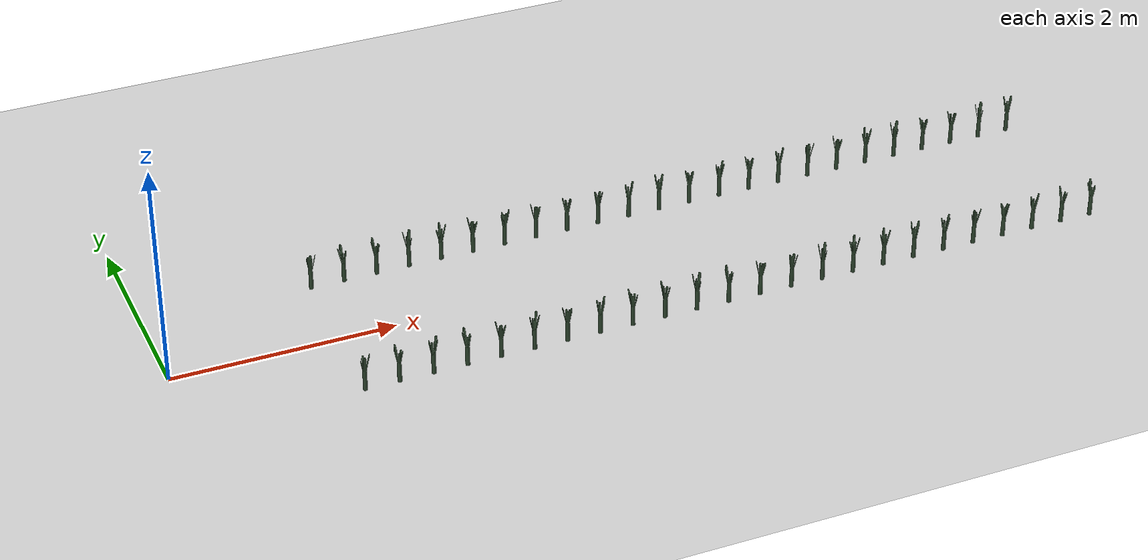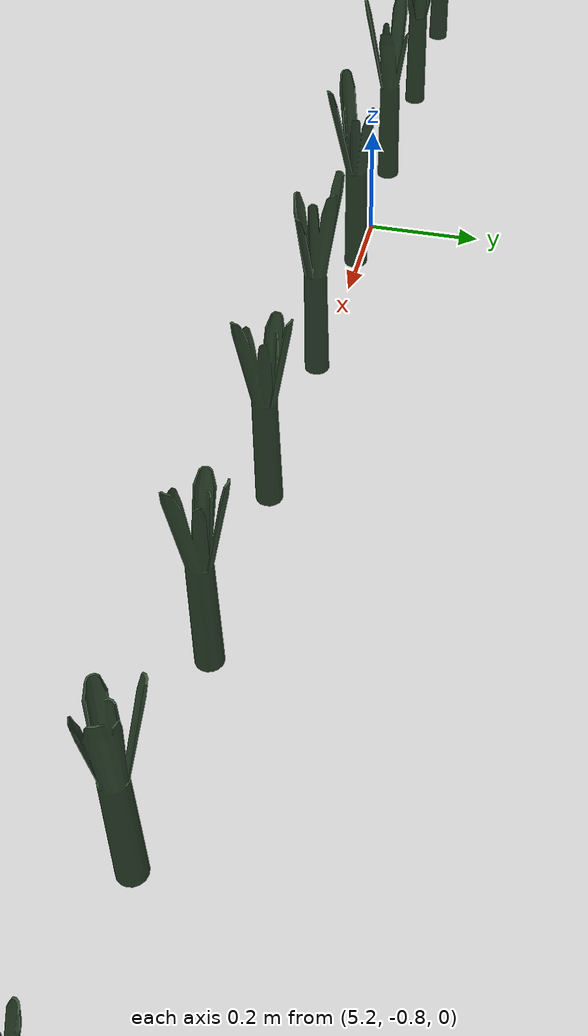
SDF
<sdf version="1.6">
 <world name="default">
  <light name="sun" type="directional">
   <pose>0 0 10 0 -0 0</pose>
   <diffuse>0.5 0.5 0.5 1</diffuse>
   <specular>0.1 0.1 0.1 1</specular>
   <attenuation>
    <range>1000</range>
    <constant>0.9</constant>
    <linear>0.01</linear>
    <quadratic>0.001</quadratic>
   </attenuation>
   <direction>0.9 0.5 -1</direction>
  </light>
  <scene><background>130 200 255 1</background><ambient>130 140 140 1</ambient></scene>
  <include><uri>model://dirt_plane</uri></include>
  <include>
   <uri>model://Leek</uri>
   <pose>1.500000 0.800000 0.15 0 0 -146.663487</pose>
   <static>0</static>
  </include>
  <include>
   <uri>model://Leek</uri>
   <pose>1.800000 0.800000 0.15 0 0 -149.057039</pose>
   <static>0</static>
  </include>
  <include><uri>model://Leek</uri><pose>2.100000 0.800000 0.15 0 0 -92.268164</pose><static>0</static></include>
  <include>
   <uri>model://Leek</uri>
   <pose>2.400000 0.800000 0.15 0 0 -118.361682</pose>
   <static>0</static>
  </include>
  <include><uri>model://Leek</uri><pose>2.700000 0.800000 0.15 0 0 -31.594706</pose><static>0</static></include>
  <include><uri>model://Leek</uri><pose>3.000000 0.800000 0.15 0 0 65.470599</pose><static>0</static></include>
  <include><uri>model://Leek</uri><pose>3.300000 0.800000 0.15 0 0 -7.781066</pose><static>0</static></include>
  <include><uri>model://Leek</uri><pose>3.600000 0.800000 0.15 0 0 166.258407</pose><static>0</static></include>
  <include>
   <uri>model://Leek</uri>
   <pose>3.900000 0.800000 0.15 0 0 -147.557406</pose>
   <static>0</static>
  </include>
  <include><uri>model://Leek</uri><pose>4.200000 0.800000 0.15 0 0 35.138611</pose><static>0</static></include>
  <include><uri>model://Leek</uri><pose>4.500000 0.800000 0.15 0 0 155.810243</pose><static>0</static></include>
  <include><uri>model://Leek</uri><pose>4.800000 0.800000 0.15 0 0 -81.205233</pose><static>0</static></include>
  <include><uri>model://Leek</uri><pose>5.100000 0.800000 0.15 0 0 166.626333</pose><static>0</static></include>
  <include><uri>model://Leek</uri><pose>5.400000 0.800000 0.15 0 0 74.332807</pose><static>0</static></include>
  <include><uri>model://Leek</uri><pose>5.700000 0.800000 0.15 0 0 91.205026</pose><static>0</static></include>
  <include><uri>model://Leek</uri><pose>6.000000 0.800000 0.15 0 0 -76.743986</pose><static>0</static></include>
  <include>
   <uri>model://Leek</uri>
   <pose>6.300000 0.800000 0.15 0 0 -159.375613</pose>
   <static>0</static>
  </include>
  <include><uri>model://Leek</uri><pose>6.600000 0.800000 0.15 0 0 -47.601428</pose><static>0</static></include>
  <include>
   <uri>model://Leek</uri>
   <pose>6.900000 0.800000 0.15 0 0 -132.046904</pose>
   <static>0</static>
  </include>
  <include><uri>model://Leek</uri><pose>7.200000 0.800000 0.15 0 0 170.416834</pose><static>0</static></include>
  <include><uri>model://Leek</uri><pose>7.500000 0.800000 0.15 0 0 59.736438</pose><static>0</static></include>
  <include>
   <uri>model://Leek</uri>
   <pose>7.800000 0.800000 0.15 0 0 -179.217257</pose>
   <static>0</static>
  </include>
  <include><uri>model://Leek</uri><pose>8.100000 0.800000 0.15 0 0 157.988045</pose><static>0</static></include>
  <include><uri>model://Leek</uri><pose>8.400000 0.800000 0.15 0 0 69.498311</pose><static>0</static></include>
  <include>
   <uri>model://Leek</uri>
   <pose>1.442273 -0.800000 0.15 0 0 -146.267688</pose>
   <static>0</static>
  </include>
  <include>
   <uri>model://Leek</uri>
   <pose>1.742273 -0.800000 0.15 0 0 -23.075671</pose>
   <static>0</static>
  </include>
  <include>
   <uri>model://Leek</uri>
   <pose>2.042273 -0.800000 0.15 0 0 -32.401732</pose>
   <static>0</static>
  </include>
  <include>
   <uri>model://Leek</uri>
   <pose>2.342273 -0.800000 0.15 0 0 -155.228920</pose>
   <static>0</static>
  </include>
  <include>
   <uri>model://Leek</uri>
   <pose>2.642273 -0.800000 0.15 0 0 153.453046</pose>
   <static>0</static>
  </include>
  <include><uri>model://Leek</uri><pose>2.942273 -0.800000 0.15 0 0 49.488678</pose><static>0</static></include>
  <include><uri>model://Leek</uri><pose>3.242273 -0.800000 0.15 0 0 34.474746</pose><static>0</static></include>
  <include><uri>model://Leek</uri><pose>3.542273 -0.800000 0.15 0 0 11.368444</pose><static>0</static></include>
  <include>
   <uri>model://Leek</uri>
   <pose>3.842273 -0.800000 0.15 0 0 -154.791518</pose>
   <static>0</static>
  </include>
  <include>
   <uri>model://Leek</uri>
   <pose>4.142273 -0.800000 0.15 0 0 -148.576182</pose>
   <static>0</static>
  </include>
  <include>
   <uri>model://Leek</uri>
   <pose>4.442273 -0.800000 0.15 0 0 -43.226717</pose>
   <static>0</static>
  </include>
  <include>
   <uri>model://Leek</uri>
   <pose>4.742273 -0.800000 0.15 0 0 121.223701</pose>
   <static>0</static>
  </include>
  <include><uri>model://Leek</uri><pose>5.042273 -0.800000 0.15 0 0 -3.345478</pose><static>0</static></include>
  <include>
   <uri>model://Leek</uri>
   <pose>5.342273 -0.800000 0.15 0 0 -65.349052</pose>
   <static>0</static>
  </include>
  <include>
   <uri>model://Leek</uri>
   <pose>5.642273 -0.800000 0.15 0 0 -149.965279</pose>
   <static>0</static>
  </include>
  <include><uri>model://Leek</uri><pose>5.942273 -0.800000 0.15 0 0 93.783967</pose><static>0</static></include>
  <include>
   <uri>model://Leek</uri>
   <pose>6.242273 -0.800000 0.15 0 0 100.254790</pose>
   <static>0</static>
  </include>
  <include>
   <uri>model://Leek</uri>
   <pose>6.542273 -0.800000 0.15 0 0 -62.455486</pose>
   <static>0</static>
  </include>
  <include>
   <uri>model://Leek</uri>
   <pose>6.842273 -0.800000 0.15 0 0 -76.641078</pose>
   <static>0</static>
  </include>
  <include>
   <uri>model://Leek</uri>
   <pose>7.142273 -0.800000 0.15 0 0 -96.277081</pose>
   <static>0</static>
  </include>
  <include>
   <uri>model://Leek</uri>
   <pose>7.442273 -0.800000 0.15 0 0 -46.899342</pose>
   <static>0</static>
  </include>
  <include><uri>model://Leek</uri><pose>7.742273 -0.800000 0.15 0 0 42.510524</pose><static>0</static></include>
  <include><uri>model://Leek</uri><pose>8.042273 -0.800000 0.15 0 0 8.202325</pose><static>0</static></include>
  <include>
   <uri>model://Leek</uri>
   <pose>8.342273 -0.800000 0.15 0 0 152.321231</pose>
   <static>0</static>
  </include>
 </world>
</sdf>

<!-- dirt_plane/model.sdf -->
<sdf version="1.4">
<model name="dirt_plane">
  <static>true</static>
    <link name="link">
      <collision name="collision">
        <geometry>
          <plane>
            <normal>0 0 1</normal>
            <size>100 100</size>
          </plane>
        </geometry>
        <surface>
          <friction>
            <ode>
              <mu>100</mu>
              <mu2>50</mu2>
            </ode>
          </friction>
        </surface>
      </collision>
      <visual name="visual">
        <cast_shadows>false</cast_shadows>
        <geometry>
          <plane>
            <normal>0 0 1</normal>
            <size>100 100</size>
          </plane>
        </geometry>
        <material>
          <script>
            <uri>model://ground_plane/materials/scripts/my_ground_plane.material</uri>
            <uri>model://ground_plane/materials/textures</uri>
            <name>my_ground_plane/Dirt</name>
          </script>
        </material>
      </visual>
    </link>
  </model>
</sdf>

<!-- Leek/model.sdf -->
<sdf version='1.6'>
  <model name='Leek'>
    <link name='link'>
      <pose frame=''>0 0 0 0 -0 0</pose>
      <inertial>
        <mass>1</mass>
        <inertia>
          <ixx>0.145833</ixx>
          <ixy>0</ixy>
          <ixz>0</ixz>
          <iyy>0.145833</iyy>
          <iyz>0</iyz>
          <izz>0.125</izz>
        </inertia>
        <pose frame=''>0 0 0 0 -0 0</pose>
      </inertial>
      <self_collide>0</self_collide>
      <kinematic>0</kinematic>
      <gravity>1</gravity>
      <visual name='visual'>
        <geometry>
          <mesh>
            <uri>model://Leek/Poireau.dae</uri>
            <scale>1 1 1</scale>
          </mesh>
        </geometry>
        <material>
          <script>
            <name>Gazebo/Grey</name>
            <uri>file://media/materials/scripts/gazebo.material</uri>
          </script>
          <ambient>0.3 0.7 0.4 0</ambient>
          <diffuse>0.2 0.3 0.2 0</diffuse>
          <specular>0 0 0 1</specular>
          <emissive>0 0 0 1</emissive>
          <shader type='vertex'>
            <normal_map>__default__</normal_map>
          </shader>
        </material>
        <pose frame=''>0 0 -0.08 0 -0 0</pose>
        <cast_shadows>1</cast_shadows>
        <transparency>0</transparency>
      </visual>
      <collision name='collision'>
        <laser_retro>0</laser_retro>
        <max_contacts>10</max_contacts>
        <pose frame=''>0 0 0 0 -0 0</pose>
        <geometry>
          <cylinder>
            <radius>0.02</radius>
            <length>0.25</length>
          </cylinder>
        </geometry>
        <surface>
          <friction>
            <ode>
              <mu>1</mu>
              <mu2>1</mu2>
              <fdir1>0 0 0</fdir1>
              <slip1>0</slip1>
              <slip2>0</slip2>
            </ode>
            <torsional>
              <coefficient>1</coefficient>
              <patch_radius>0</patch_radius>
              <surface_radius>0</surface_radius>
              <use_patch_radius>1</use_patch_radius>
              <ode>
                <slip>0</slip>
              </ode>
            </torsional>
          </friction>
          <bounce>
            <restitution_coefficient>0</restitution_coefficient>
            <threshold>1e+06</threshold>
          </bounce>
          <contact>
            <collide_without_contact>0</collide_without_contact>
            <collide_without_contact_bitmask>1</collide_without_contact_bitmask>
            <collide_bitmask>1</collide_bitmask>
            <ode>
              <soft_cfm>0</soft_cfm>
              <soft_erp>0.2</soft_erp>
              <kp>1e+13</kp>
              <kd>1</kd>
              <max_vel>0.01</max_vel>
              <min_depth>0</min_depth>
            </ode>
            <bullet>
              <split_impulse>1</split_impulse>
              <split_impulse_penetration_threshold>-0.01</split_impulse_penetration_threshold>
              <soft_cfm>0</soft_cfm>
              <soft_erp>0.2</soft_erp>
              <kp>1e+13</kp>
              <kd>1</kd>
            </bullet>
          </contact>
        </surface>
      </collision>
    </link>
    <static>0</static>
    <allow_auto_disable>1</allow_auto_disable>
  </model>
</sdf>
